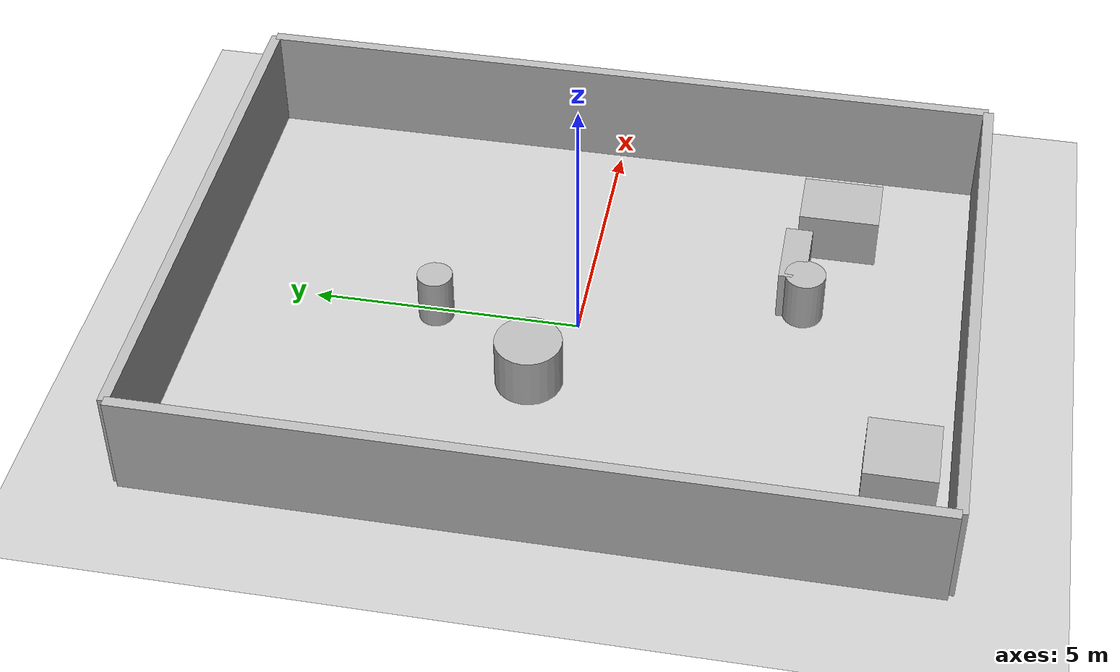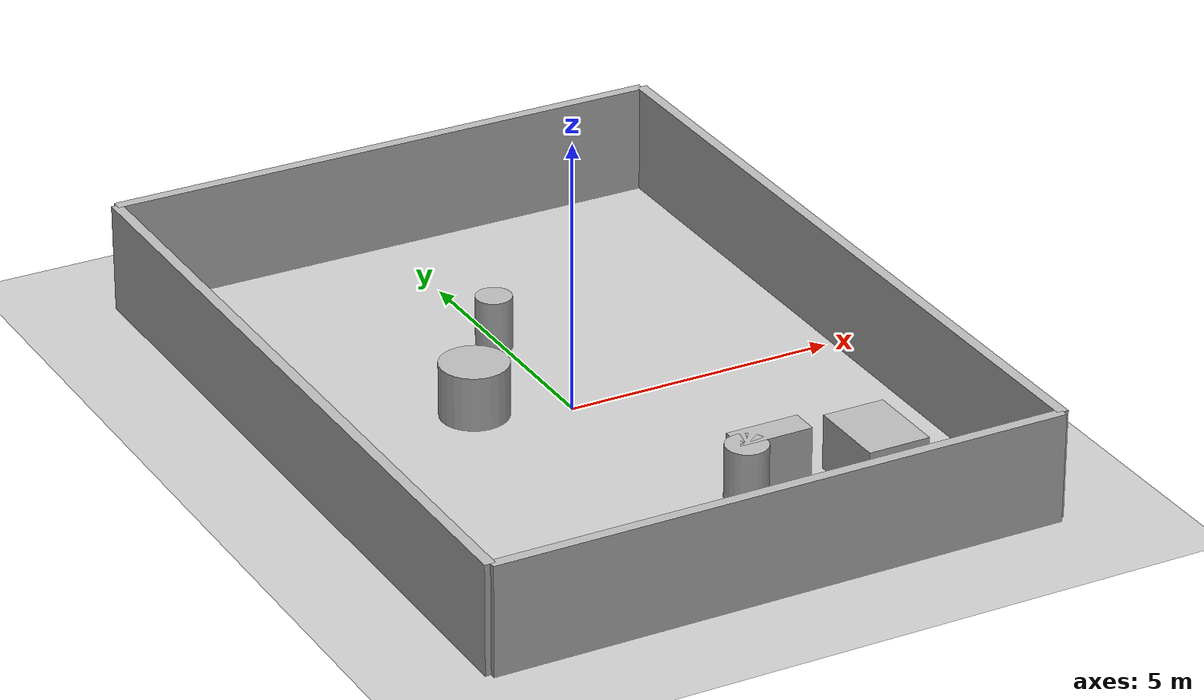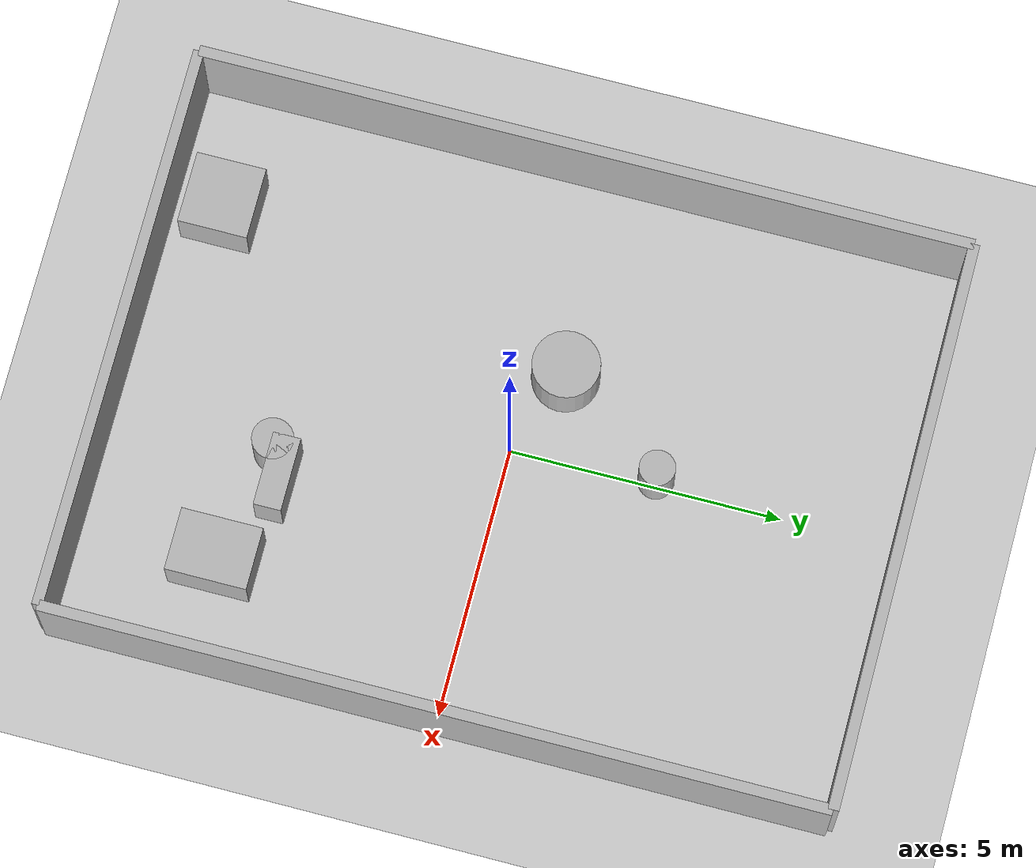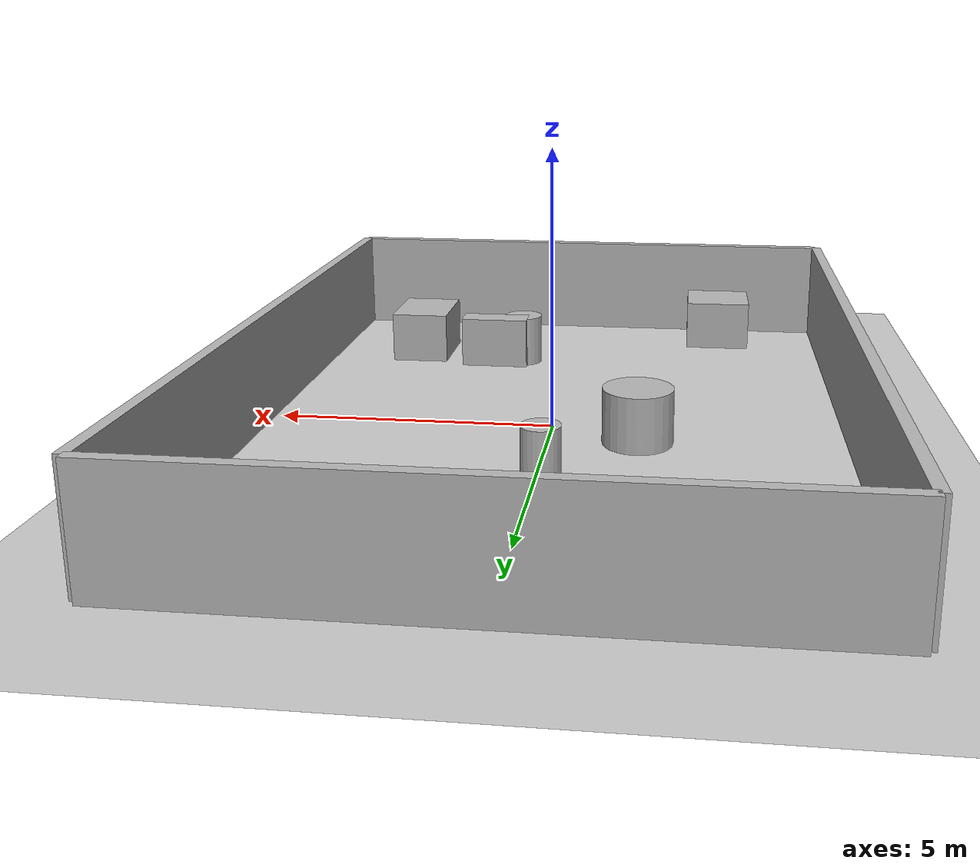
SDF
<?xml version="1.0"?>
<sdf version="1.6">
  <world name="env_79">

    <include><uri>model://ground_plane</uri></include>
    <include><uri>model://sun</uri></include>

    <!-- WALLS -->
    <model name="wall_north"><static>true</static><pose>0 7.12782856341291 1 0 0 0</pose>
      <link name="link"><collision name="collision">
        <geometry><box><size>10.50123594116976 0.2 2</size></box></geometry>
      </collision><visual name="visual">
        <geometry><box><size>10.50123594116976 0.2 2</size></box></geometry>
      </visual></link>
    </model>

    <model name="wall_south"><static>true</static><pose>0 -7.12782856341291 1 0 0 0</pose>
      <link name="link"><collision name="collision">
        <geometry><box><size>10.50123594116976 0.2 2</size></box></geometry>
      </collision><visual name="visual">
        <geometry><box><size>10.50123594116976 0.2 2</size></box></geometry>
      </visual></link>
    </model>

    <model name="wall_east"><static>true</static><pose>5.25061797058488 0 1 0 0 1.57</pose>
      <link name="link"><collision name="collision">
        <geometry><box><size>14.25565712682582 0.2 2</size></box></geometry>
      </collision><visual name="visual">
        <geometry><box><size>14.25565712682582 0.2 2</size></box></geometry>
      </visual></link>
    </model>

    <model name="wall_west"><static>true</static><pose>-5.25061797058488 0 1 0 0 1.57</pose>
      <link name="link"><collision name="collision">
        <geometry><box><size>14.25565712682582 0.2 2</size></box></geometry>
      </collision><visual name="visual">
        <geometry><box><size>14.25565712682582 0.2 2</size></box></geometry>
      </visual></link>
    </model>

    <!-- SENSOR -->

    <model name="lidar_sensor">
      <static>true</static>
      <pose>-3.5393049813367483 -3.14480393170395 0.4 0 0 0</pose>
      <link name="link">
        <sensor name="lidar" type="ray">
          <pose>0 0 0 0 0 0</pose>
          <visualize>true</visualize>
          <always_on>true</always_on>
          <update_rate>10</update_rate>
          <ray>
            <scan><horizontal>
              <samples>240</samples>
              <resolution>1</resolution>
              <min_angle>-3.14159</min_angle>
              <max_angle>3.14159</max_angle>
            </horizontal></scan>
            <range><min>0.15</min><max>20.0</max><resolution>0.01</resolution></range>
          </ray>
          <plugin name="lidar_plugin" filename="liblidar_plugin.so"/>
        </sensor>
      </link>
    </model>

    <!-- OBSTACLES -->

    <model name="obstacle_0">
      <static>true</static>
      <pose>1.6466915097653727 -3.834086376322444 0.5 0 0 0</pose>
      <link name="link">
        <collision name="collision">
          <geometry><box><size>1.36 0.51 1.0</size></box></geometry>
        </collision>
        <visual name="visual">
          <geometry><box><size>1.36 0.51 1.0</size></box></geometry>
        </visual>
      </link>
    </model>

    <model name="obstacle_1">
      <static>true</static>
      <pose>-0.12013323254684494 2.666482373739928 0.5 0 0 0</pose>
      <link name="link">
        <collision name="collision">
          <geometry><cylinder><radius>0.33</radius><length>1.0</length></cylinder></geometry>
        </collision>
        <visual name="visual">
          <geometry><cylinder><radius>0.33</radius><length>1.0</length></cylinder></geometry>
        </visual>
      </link>
    </model>

    <model name="obstacle_2">
      <static>true</static>
      <pose>1.0858618087052214 -4.069214280085323 0.5 0 0 0</pose>
      <link name="link">
        <collision name="collision">
          <geometry><cylinder><radius>0.38</radius><length>1.0</length></cylinder></geometry>
        </collision>
        <visual name="visual">
          <geometry><cylinder><radius>0.38</radius><length>1.0</length></cylinder></geometry>
        </visual>
      </link>
    </model>

    <model name="obstacle_3">
      <static>true</static>
      <pose>-1.5528769378269822 0.6285831764575418 0.5 0 0 0</pose>
      <link name="link">
        <collision name="collision">
          <geometry><cylinder><radius>0.62</radius><length>1.0</length></cylinder></geometry>
        </collision>
        <visual name="visual">
          <geometry><cylinder><radius>0.62</radius><length>1.0</length></cylinder></geometry>
        </visual>
      </link>
    </model>

    <model name="obstacle_4">
      <static>true</static>
      <pose>3.2849455007453887 -4.541785725099343 0.5 0 0 0</pose>
      <link name="link">
        <collision name="collision">
          <geometry><box><size>1.15 1.5 1.0</size></box></geometry>
        </collision>
        <visual name="visual">
          <geometry><box><size>1.15 1.5 1.0</size></box></geometry>
        </visual>
      </link>
    </model>

    <model name="obstacle_5">
      <static>true</static>
      <pose>-3.039726272521352 -6.146303993504156 0.5 0 0 0</pose>
      <link name="link">
        <collision name="collision">
          <geometry><box><size>1.33 1.29 1.0</size></box></geometry>
        </collision>
        <visual name="visual">
          <geometry><box><size>1.33 1.29 1.0</size></box></geometry>
        </visual>
      </link>
    </model>

  </world>
</sdf>
